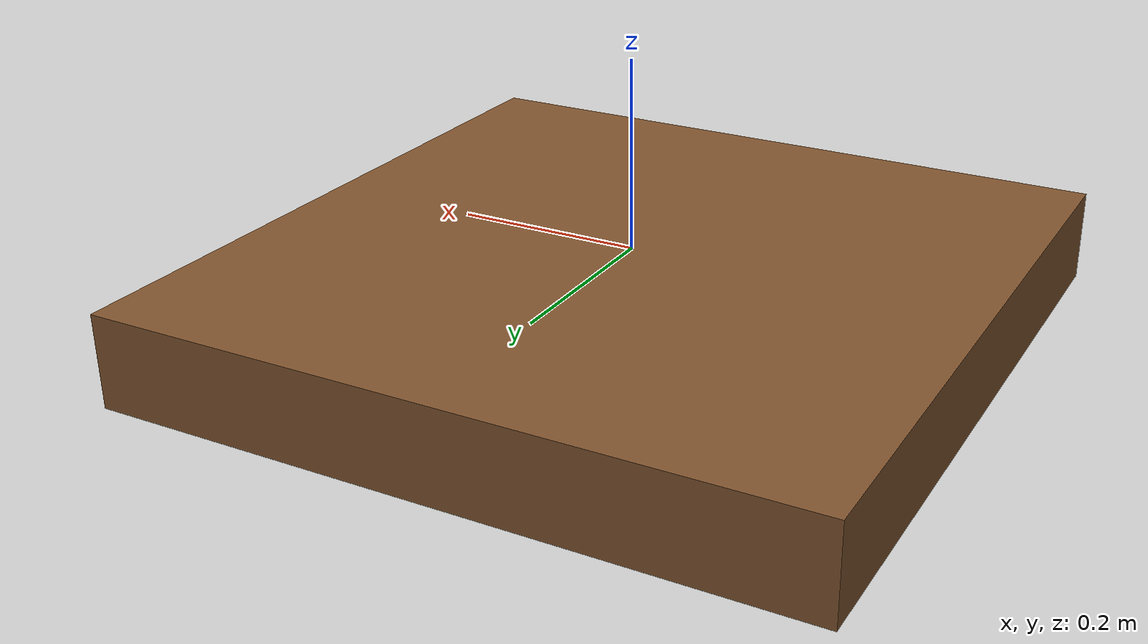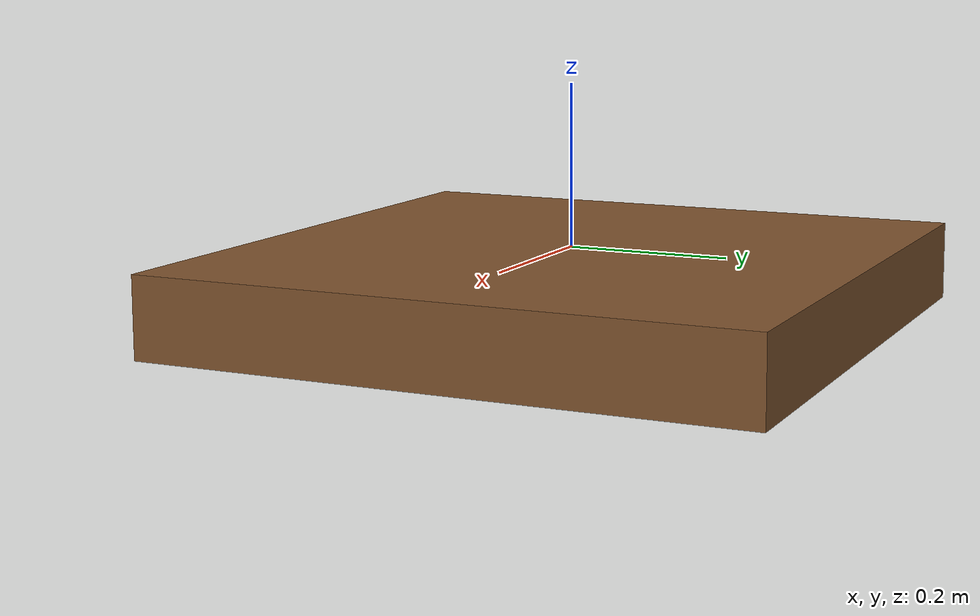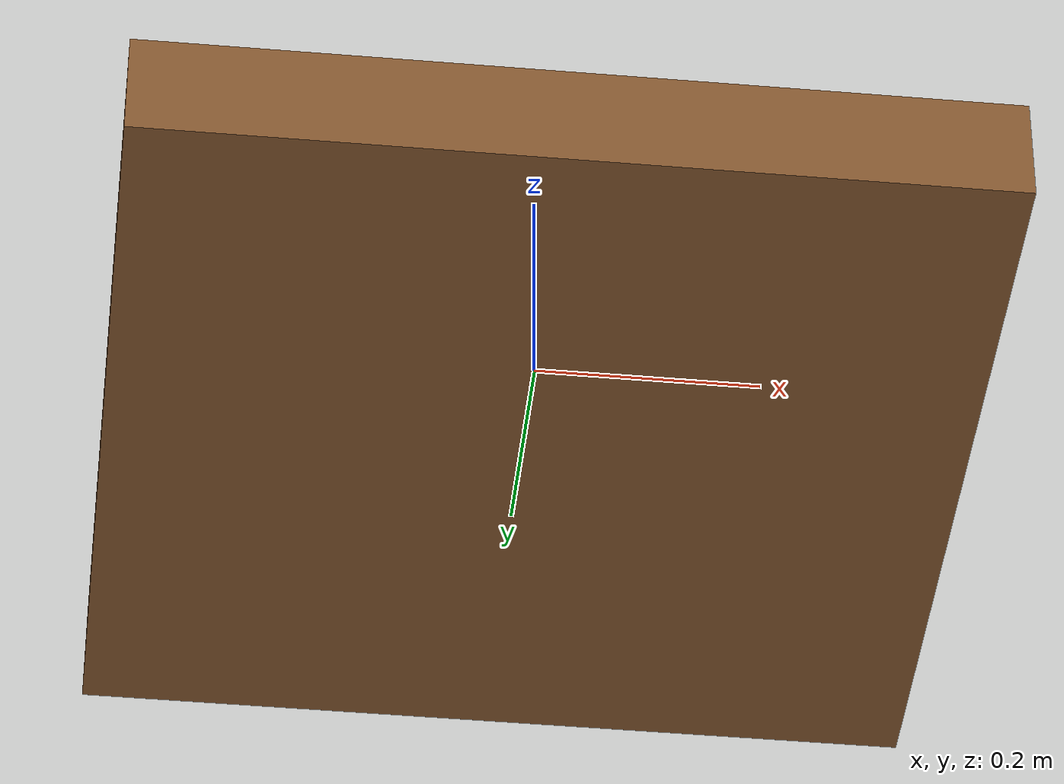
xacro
<?xml version="1.0"?>
<robot name="jump_platform" xmlns:xacro="http://ros.org/wiki/xacro">

<link name="link">
	<inertial>
		<mass value="10"/>
		<inertia ixx="0.4" ixy="0.0" ixz="0.0" iyy="0.4" iyz="0.0" izz="0.2"/>
	</inertial>

	<visual > <!-- dont put name otherwise gazebo discards color-->
		<origin xyz="0 0 -0.05" rpy="0 0 0"/>
		<geometry>
			<box size="0.75 0.75 0.1"/>
		</geometry>
		<material name="Brown"/><!--rviz"/-->

	</visual>

	<collision name="box">
	<origin xyz="0 0 -0.05" rpy="0 0 0"/>
	<geometry>
		<box size="0.75 0.75 0.1"/>
	</geometry>

		<surface>
		<bounce>
		<restitution_coefficient>0.01</restitution_coefficient>
		<threshold>5.0</threshold>
		</bounce>
		<friction>
		<ode>
		<mu>1</mu>
		<mu2>1</mu2>
		</ode>
		</friction>
		<contact>
		<ode>
		<max_vel>0.1</max_vel>
		<min_depth>0.001</min_depth>
		<kp>1000000.0</kp>
		<kd>1000.0</kd>
		</ode>
		</contact>
		</surface>
	</collision>

</link>

<gazebo>
    <static>true</static>
</gazebo>

 <!--one of this /usr/share/gazebo-11/media/materials/scripts/gazebo.material   is for gazebo -->

</robot>
